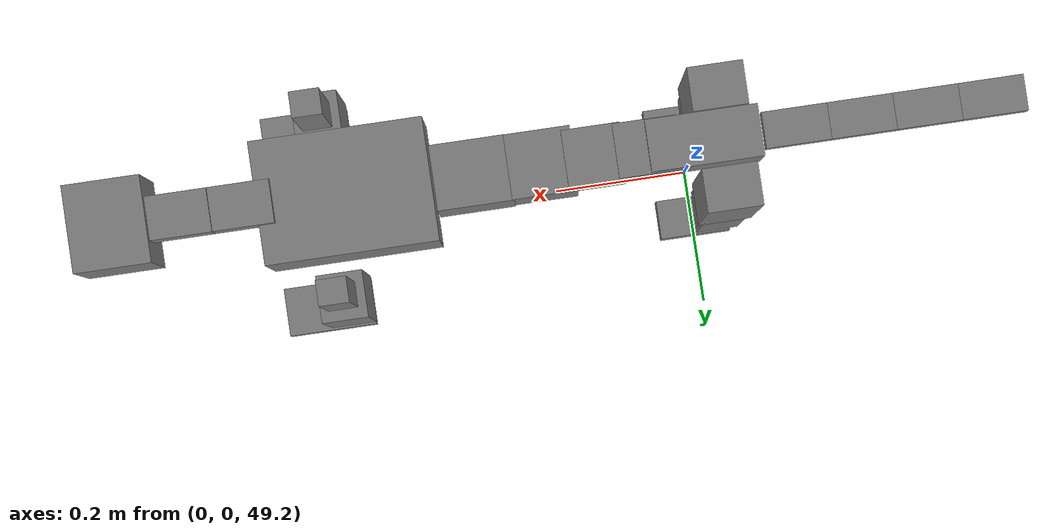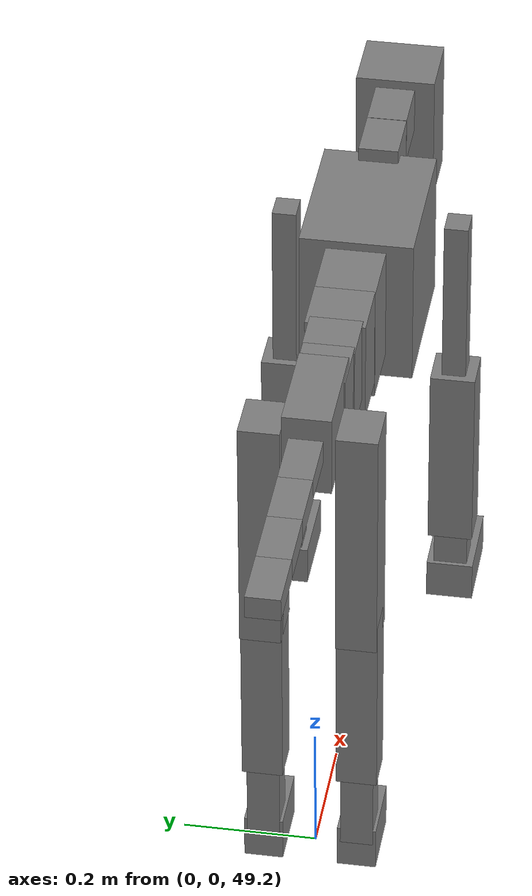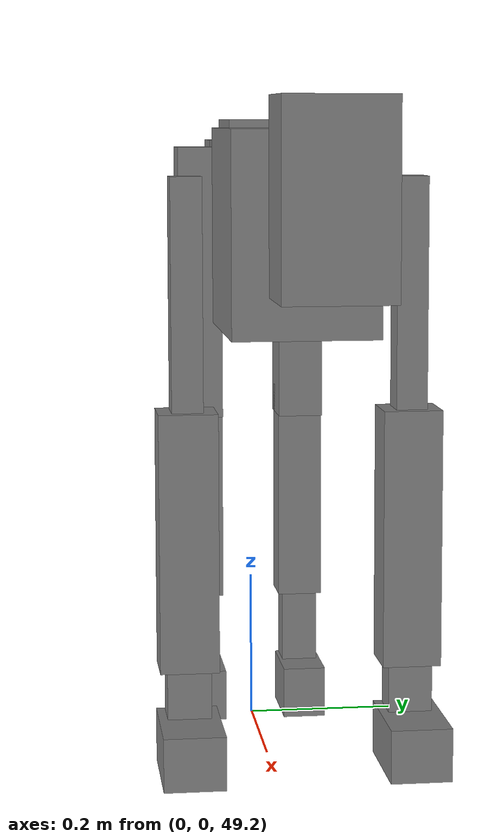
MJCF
<mujoco model="dog">

    <default>
        <joint armature="0.02" stiffness="1" damping="0.2" limited="true"/>
        <geom condim="3" friction="1 0.05 0.05" margin="0.01"/>
        <motor ctrllimited="true" ctrlrange="-1.0 1.0" forcelimited="true" gear="50"/>
    </default>

    <compiler inertiafromgeom="true" angle="radian"/>

    <option timestep="0.016" iterations="50" tolerance="1e-10" solver="Newton" jacobian="dense" cone="pyramidal"/>

    <size nconmax="20000" njmax="60000" nstack="5000000"/>
    <visual>
        <map force="0.1" zfar="30"/>
        <rgba haze="0.15 0.25 0.35 1"/>
        <quality shadowsize="2048"/>
        <global offwidth="800" offheight="800"/>
    </visual>

    <asset>
        <texture type="skybox" builtin="gradient" rgb1="0.3 0.5 0.7" rgb2="0 0 0" width="512" height="512"/>
        <texture name="texplane" type="2d" builtin="checker" rgb1=".2 .3 .4" rgb2=".1 0.15 0.2" width="512" height="512"
                 mark="cross" markrgb=".8 .8 .8"/>
        <texture name="texgeom" type="cube" builtin="flat" mark="cross" width="127" height="1278" rgb1="0.8 0.6 0.4"
                 rgb2="0.8 0.6 0.4" markrgb="1 1 1" random="0.01"/>

        <material name="matplane" reflectance="0.3" texture="texplane" texrepeat="1 1" texuniform="true"/>
        <material name="matgeom" texture="texgeom" texuniform="true" rgba="0.8 0.6 .4 1"/>
    </asset>

    <worldbody>
        <geom name="floor" pos="0 0 0" size="0 0 .25" type="plane" material="matplane" condim="3"/>

        <light directional="false" diffuse=".2 .2 .2" specular="0 0 0" pos="0 0 5" dir="0 0 -1" castshadow="false"/>
        <light mode="targetbodycom" target="torso" directional="false" diffuse=".8 .8 .8" specular="0.3 0.3 0.3"
               pos="0 0 4.0" dir="0 0 -1"/>

        <body name="root" pos="0 0 50">
            <freejoint name="root_1"/>
            <geom type="box" pos="0 0 -0.02" size="0.0774  0.0358  0.063" density="2030"/>

            <body name="spine1" pos="0.054 0 0">
                <joint name="spine1_y" axis="0 1 0" range="0 0.7" limited="true"/>
                <geom type="box" pos="0.02375 0 -0.03" size="0.04375  0.0375  0.05985" density="2030"/>

                <body name="spine2" pos="0.0612 0 0">
                    <joint name="spine2_y" axis="0 1 0" range="-0.15 0.15" limited="true"/>
                    <geom type="box" pos="0.03555  0  -0.04" size="0.04055  0.039  0.06615" density="2030"/>

                    <body name="spine3" pos="0.0730 0 0">
                        <joint name="spine3_y" axis="0 1 0" range="-0.15 0.15" limited="true"/>
                        <geom type="box" pos="0.03555  0  -0.057" size="0.04555  0.0445  0.081" density="2030"/>

                        <body name="spine4" pos="0.0780 0 0">
                            <joint name="spine4_y" axis="0 1 0" range="-0.15 0.15" limited="true"/>
                            <geom type="box" pos="0.05265  0  -0.07" size="0.05265  0.045  0.09135" density="2030"/>

                            <body name="torso" pos="0.1082 0 0">
                                <joint name="torso_y" axis="0 1 0" range="-0.15 0.15" limited="true"/>
                                <geom type="box" pos="0.11925  0  -0.085" size="0.11925  0.085  0.11745"
                                      density="2030"/>

                                <body name="neck1" pos="0.2160  0   0.0180">
                                    <joint name="neck1_y" axis="0 1 0" range="-1.2  -1" limited="true"/>
                                    <geom type="box" pos="0.0423  0  0" size="0.0423  0.03  0.036" density="2325"/>

                                    <body name="neck2" pos="0.0853  0  0">
                                        <joint name="neck2_y" axis="0 1 0" range="0.1  0" limited="true"/>
                                        <geom type="box" pos="0.0423  0  0" size="0.0423  0.03  0.036" density="2325"/>

                                        <body name="head" pos="0.0853  0  0">
                                            <joint name="head_y" axis="0 1 0" range="-0.3  -0.2" limited="true"/>
                                            <geom type="box" pos="0.0531  0  -0.055" size="0.0531  0.06  0.1044"
                                                  density="4030"/>

                                        </body>
                                    </body>
                                </body>

                                <body name="front_shoulder" pos="0.156  0   -0.0480">
                                    <joint name="front_shoulder_y" axis="0 1 0" range="-1 1.5" limited="true"/>
                                    <geom type="box" pos="0 0.13 -0.1210" size="0.0212  0.0182  0.1477" density="1158"/>
                                    <geom type="box" pos="0 -0.13 -0.1210" size="0.0212  0.0182  0.1477"
                                          density="1158"/>

                                    <body name="front_elbow" pos="0  0  -0.2420">
                                        <joint name="front_elbow_y" axis="0 1 0" range="-2 0" limited="true"/>
                                        <geom type="box" pos="0 0.13 -0.1510" size="0.0335  0.0343  0.1510"
                                              density="1081"/>
                                        <geom type="box" pos="0 -0.13 -0.1510" size="0.0335  0.0343  0.1510"
                                              density="1081"/>

                                        <body name="front_wrist" pos="0  0  -0.3021">
                                            <joint name="front_wrist_y" axis="0 1 0" range="-0.2 0" limited="true"/>
                                            <geom type="box" pos="0 0.13 -0.0358" size="0.0231  0.0257  0.0489"
                                                  density="1664"/>
                                            <geom type="box" pos="0 -0.13 -0.0358" size="0.0231  0.0257  0.0489"
                                                  density="1664"/>

                                            <body name="front_finger_end" pos="0  0  -0.0716">
                                                <joint name="front_finger_y" axis="0 1 0" range="-0.4 1"
                                                       limited="true"/>
                                                <geom type="box" pos="0.0358  0.13  -0.0164"
                                                      size="0.0656  0.0358  0.0314" density="1515"/>
                                                <geom type="box" pos="0.0358  -0.13  -0.0164"
                                                      size="0.0656  0.0358  0.0314" density="1515"/>

                                            </body>

                                        </body>
                                    </body>
                                </body>

                            </body>
                        </body>
                    </body>
                </body>
            </body>

            <body name="back_hip" pos="-0.03 0 -0.018">
                <joint name="back_hip_y" axis="0 1 0" range="-1.5 0.3" limited="true"/>
                <geom type="box" pos="0 0.07 -0.1651" size="0.0386  0.0303  0.1879" density="1154"/>
                <geom type="box" pos="0 -0.07 -0.1651" size="0.0386  0.0303  0.1879" density="1154"/>

                <body name="back_knee" pos="0  0  -0.3302">
                    <joint name="back_knee_y" axis="0 1 0" range="0 2.8" limited="true"/>
                    <geom type="box" pos="0 0.07 -0.1327" size="0.0308  0.0303  0.1482" density="1227"/>
                    <geom type="box" pos="0 -0.07 -0.1327" size="0.0308  0.0303  0.1482" density="1227"/>

                    <body name="back_ankle" pos="0  0  -0.2653">
                        <joint name="back_ankle_y" axis="0 1 0" range="-2.2 0" limited="true"/>
                        <geom type="box" pos="0 0.07 -0.0637" size="0.0244  0.0244  0.0749" density="1284"/>
                        <geom type="box" pos="0 -0.07 -0.0637" size="0.0244  0.0244  0.0749" density="1284"/>

                        <body name="back_toe_end" pos="0  0  -0.1274">
                            <joint name="back_toe_y" axis="0 1 0" range="-0.4 1" limited="true"/>
                            <geom type="box" pos="0.0290  0.07  -0.0197" size="0.0532  0.0290  0.0347" density="1515"/>
                            <geom type="box" pos="0.0290  -0.07  -0.0197" size="0.0532  0.0290  0.0347" density="1515"/>

                        </body>
                    </body>
                </body>
            </body>

            <body name="tail1" pos="-0.074 0 -0.006">
                <joint name="tail1_y" axis="0 1 0" range="-0.2 0.2" limited="true"/>
                <geom type="box" pos="-0.0536  0  0" size="0.045  0.025  0.0175" density="1587"/>

                <body name="tail2" pos="-0.09 0 0">
                    <joint name="tail2_y" axis="0 1 0" range="-0.2 0.2" limited="true"/>
                    <geom type="box" pos="-0.0536  0  0" size="0.045  0.025  0.0175" density="1587"/>

                    <body name="tail3" pos="-0.09 0 0">
                        <joint name="tail3_y" axis="0 1 0" range="-0.2 0.2" limited="true"/>
                        <geom type="box" pos="-0.0536  0  0" size="0.045  0.025  0.0175" density="1587"/>

                        <body name="tail4" pos="-0.09 0 0">
                            <joint name="tail4_y" axis="0 1 0" range="-0.2 0.2" limited="true"/>
                            <geom type="box" pos="-0.0536  0  0" size="0.045  0.025  0.0175" density="1587"/>

                        </body>
                    </body>
                </body>
            </body>
        </body>
    </worldbody>

    <actuator>
        <motor joint="spine1_y" forcerange="-150 150     "/>
        <motor joint="spine2_y" forcerange="-150 150     "/>
        <motor joint="spine3_y" forcerange="-150 150     "/>
        <motor joint="spine4_y" forcerange="-150 150     "/>
        <motor joint="torso_y" forcerange="-150 150     "/>
        <motor joint="neck1_y" forcerange="-100 100       "/>
        <motor joint="neck2_y" forcerange="-100 100       "/>
        <motor joint="head_y" forcerange="-150 150       "/>
        <motor joint="front_shoulder_y" forcerange="-120.86 100.18"/>
        <motor joint="front_elbow_y" forcerange="-149.39 199.85"/>
        <motor joint="front_wrist_y" forcerange="-57.09 148.55"/>
        <motor joint="front_finger_y" forcerange="-91.13 59.57"/>
        <motor joint="back_hip_y" forcerange="-213.60 390.11"/>
        <motor joint="back_knee_y" forcerange="-340.66 300.46"/>
        <motor joint="back_angle_y" forcerange="-166.82 123.38"/>
        <motor joint="back_toe_y" forcerange="-91.35 60.63"/>
        <motor joint="tail1_y" forcerange="-50 50     "/>
        <motor joint="tail2_y" forcerange="-50 50     "/>
        <motor joint="tail3_y" forcerange="-50 50     "/>
        <motor joint="tail4_y" forcerange="-50 50     "/>
    </actuator>
</mujoco>
